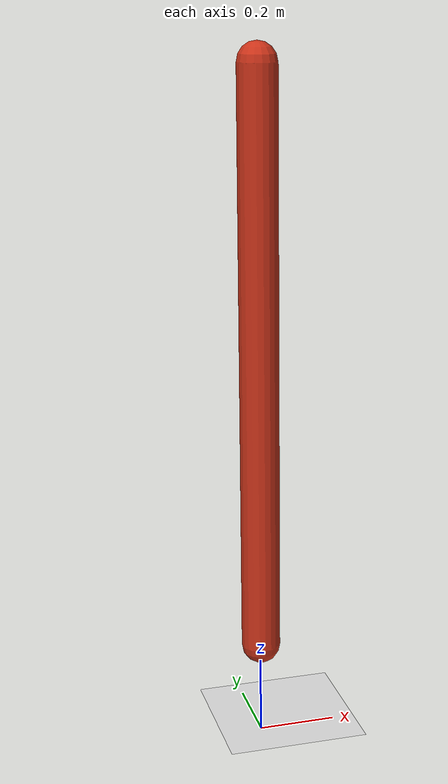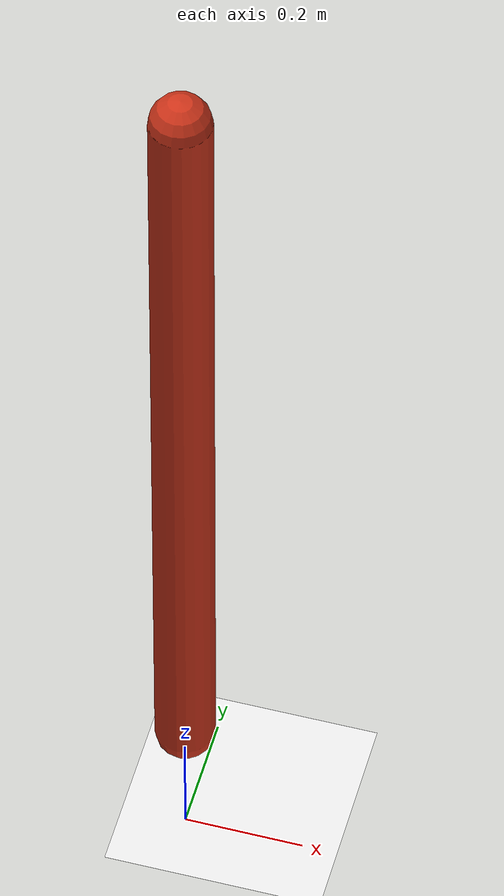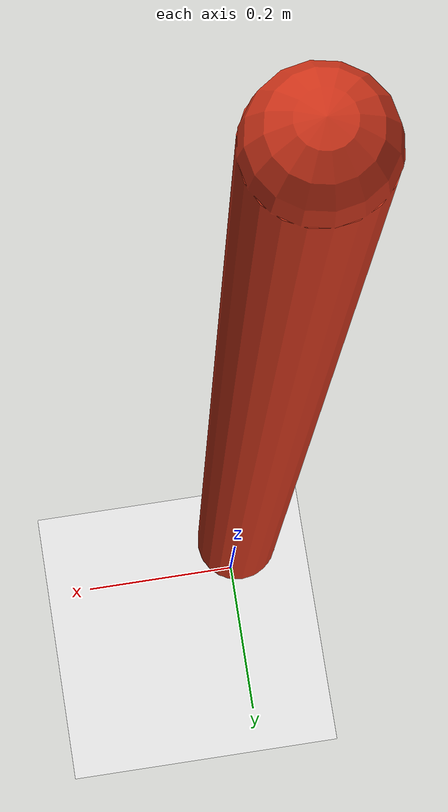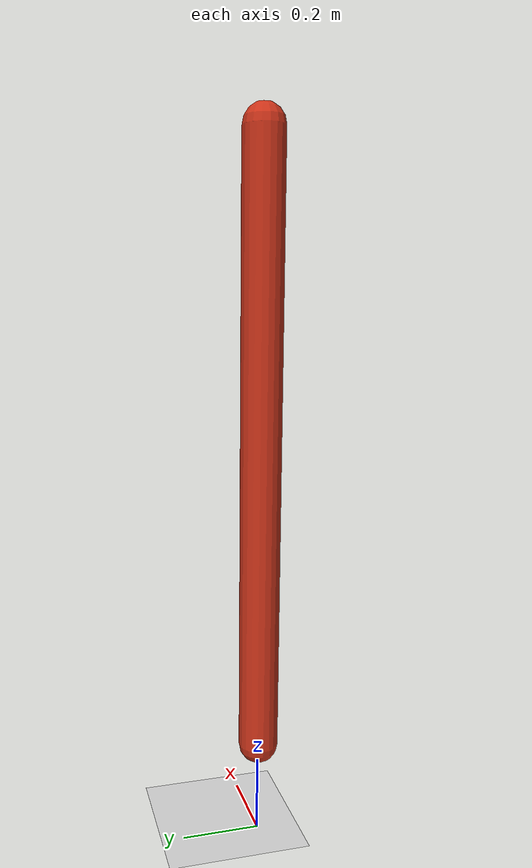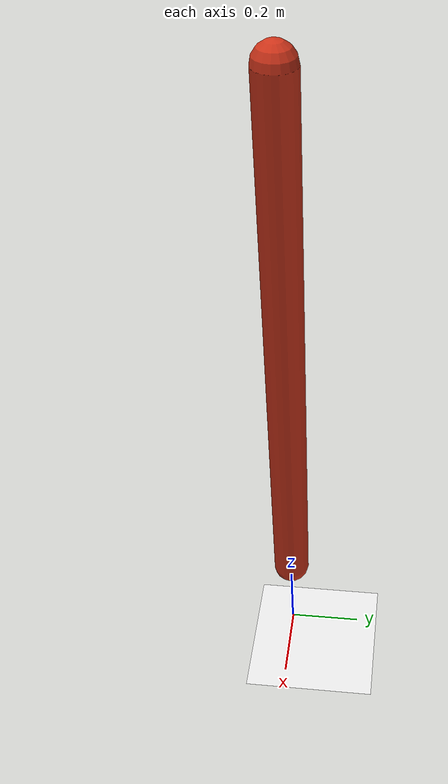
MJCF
<mujoco model="rotating_rod">
    <option gravity="0 0 -9.81"/>

    <worldbody>
        <light diffuse=".5 .5 .5" pos="0 0 3" dir="0 0 -1"/>
        <geom type="plane" size="5 5 0.1" rgba=".9 .9 .9 1"/>

        <body pos="0 0 1" euler="0 0 0">
            <joint type="hinge" axis="0 0 1" name="hinge"/>
            <geom type="capsule" size="0.05 0.75" mass="2" rgba=".8 .2 .1 1"/>
        </body>
    </worldbody>

    <actuator>
        <motor joint="hinge" name="torque" gear="1" ctrllimited="true" ctrlrange="-10 10"/>
    </actuator>

    <sensor>
        <jointvel joint="hinge" name="hinge_vel"/>
    </sensor>
</mujoco>
